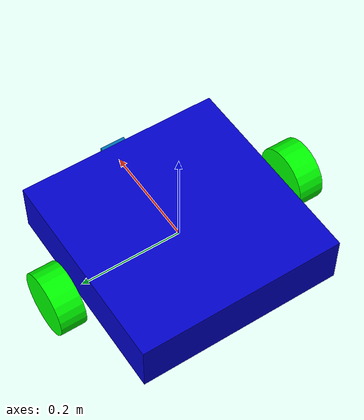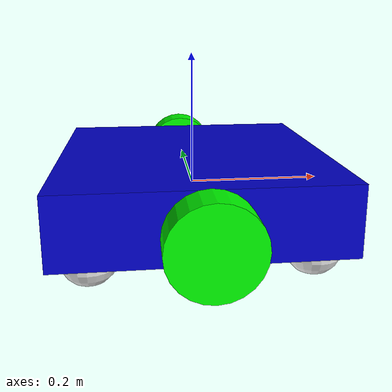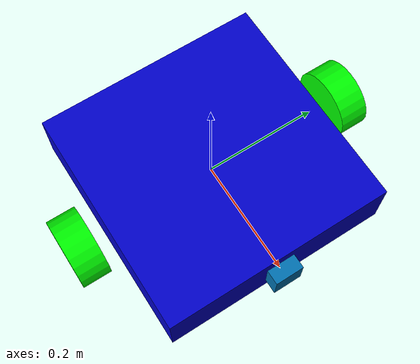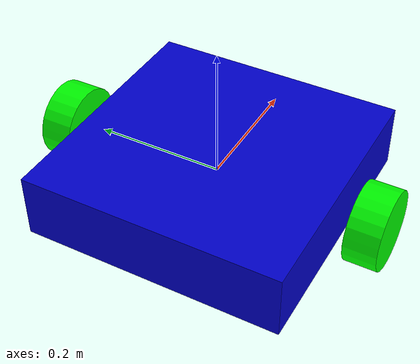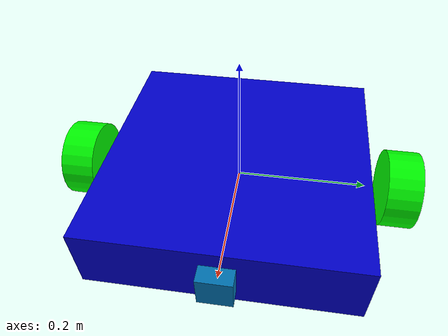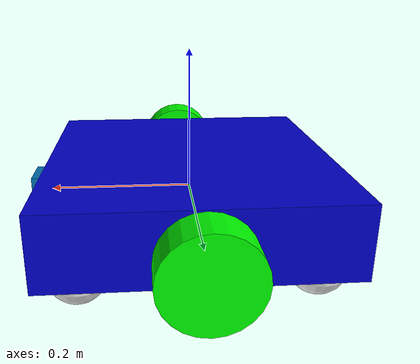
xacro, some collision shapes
<?xml version='1.0'?>
<robot name="udacity_bot"
	xmlns:xacro="http://www.ros.org/wiki/xacro">
	<material name="blue">
		<color rgba="0 0 0.8 1"/>
	</material>
	<material name="green">
		<color rgba="0 1 0 1"/>
	</material>
	<xacro:include filename="$(find udacity_bot)/urdf/udacity_bot.gazebo" />
	<link name="robot_footprint"></link>
	<joint name="robot_footprint_joint" type="fixed">
		<origin xyz="0 0 0" rpy="0 0 0" />
		<parent link="robot_footprint"/>
		<child link="chassis" />
	</joint>
<link name="chassis">
		<inertial>
			<mass value="15.0"/>
			<origin xyz="0.0 0 0" rpy=" 0 0 0"/>
			<inertia
          ixx="0.1" ixy="0" ixz="0"
          iyy="0.1" iyz="0"
          izz="0.1"
      />
		</inertial>
		<collision name='collision'>
			<origin xyz="0 0 0" rpy=" 0 0 0"/>
			<geometry>
				 <box size="0.4 0.4 0.1"/>

			</geometry>
		</collision>
		<visual>
			<geometry>
				 <box size="0.4 0.4 0.1"/>
			</geometry>
			<origin rpy="0 0 0" xyz="0 0 0"/>
			<material name="blue"/>
		</visual>
	<visual name='left_caster_visual'>
			<origin xyz="0.15 -0.15 -0.05" rpy=" 0 0 0"/>
			<geometry>
				<sphere radius="0.04"/>
			</geometry>
			<material name="white"/>
		</visual>
		<collision name='left_caster_collision'>
			<origin xyz="0.15 -0.15 -0.05" rpy=" 0 0 0"/>
			<geometry>
				<sphere radius="0.05"/>
			</geometry>
			<surface>
				<friction>
					<ode>
						<mu>0</mu>
						<mu2>0</mu2>
						<slip1>1.0</slip1>
						<slip2>1.0</slip2>
					</ode>
				</friction>
			</surface>
		</collision>
		<visual name='right_caster_visual'>
			<origin xyz="-0.15 0.15 -0.05" rpy=" 0 0 0"/>
			<geometry>
				<sphere radius="0.04"/>
			</geometry>
			<material name="white"/>
		</visual>
		<collision name='right_caster_collision'>
			<origin xyz="-0.15 0.15 -0.05" rpy=" 0 0 0"/>
			<geometry>
				<sphere radius="0.05"/>
			</geometry>
			<surface>
				<friction>
					<ode>
						<mu>0</mu>
						<mu2>0</mu2>
						<slip1>1.0</slip1>
						<slip2>1.0</slip2>
					</ode>
				</friction>
			</surface>
		</collision>
		<visual name='back_caster_visual'>
			<origin xyz="-0.15 -0.15 -0.05" rpy=" 0 0 0"/>
			<geometry>
				<sphere radius="0.04"/>
			</geometry>
			<material name="white"/>
		</visual>
		<collision name='back_caster_collision'>
			<origin xyz="-0.15 -0.15 -0.05" rpy=" 0 0 0"/>
			<geometry>
				<sphere radius="0.05"/>
			</geometry>
			<surface>
				<friction>
					<ode>
						<mu>0</mu>
						<mu2>0</mu2>
						<slip1>1.0</slip1>
						<slip2>1.0</slip2>
					</ode>
				</friction>
			</surface>
		</collision>
		<visual name='front_caster_visual'>
			<origin xyz="0.15 0.15 -0.05" rpy=" 0 0 0"/>
			<geometry>
				<sphere radius="0.04"/>
			</geometry>
			<material name="white"/>
		</visual>
		<collision name='front_caster_collision'>
			<origin xyz="0.15 0.15 -0.05" rpy=" 0 0 0"/>
			<geometry>
				<sphere radius="0.05"/>
			</geometry>
			<surface>
				<friction>
					<ode>
						<mu>0</mu>
						<mu2>0</mu2>
						<slip1>1.0</slip1>
						<slip2>1.0</slip2>
					</ode>
				</friction>
			</surface>
		</collision>
	</link>
	<link name="left_wheel">
		<visual>
			<geometry>
				<cylinder length="0.05" radius="0.06"/>
			</geometry>
			<origin rpy="0 1.5707 1.5707" xyz="0 0 0"/>
			<material name="green"/>
		</visual>
		<collision name="collision">
			<origin xyz="0 0 0" rpy="0 1.5707 1.5707"/>
			<geometry>
				<cylinder length="0.05" radius="0.1"/>
			</geometry>
		</collision>
		<inertial>
			<origin xyz="0 0 0" rpy="0 1.5707 1.5707"/>
			<mass value="5"/>
			<inertia ixx=".1"  ixy="0"  ixz="0" iyy=".1" iyz="0" izz=".1" />
		</inertial>
	</link>
	<joint name="left_wheel_hinge" type="continuous">
		<parent link="chassis"/>
		<child link="left_wheel"/>
		<origin xyz="0 0.25 0" rpy="0 0 0"/>
	</joint>
	<link name="right_wheel">
		<visual>
			<geometry>
				<cylinder length="0.05" radius="0.06"/>
			</geometry>
			<origin rpy="0 1.5707 1.5707" xyz="0 0 0"/>
			<material name="green"/>
		</visual>
		<collision name="collision">
			<origin xyz="0 0 0" rpy="0 1.5707 1.5707"/>
			<geometry>
				<cylinder length="0.05" radius="0.1"/>
			</geometry>
		</collision>
		<inertial>
			<origin xyz="0 0 0" rpy="0 1.5707 1.5707"/>
			<mass value="5"/>
			<inertia ixx=".1"  ixy="0"  ixz="0" iyy=".1" iyz="0" izz=".1" />
		</inertial>
	</link>
	<joint name="right_wheel_hinge" type="continuous">
		<parent link="chassis"/>
		<child link="right_wheel"/>
		<origin xyz="0 -0.25 0" rpy="0 0 0"/>
	</joint>
	<link name ="camera">
		<origin xyz="0 0 0" rpy="0 0 0"/>
		<collision>
			<origin xyz="0.2 0 0" rpy="0 0 0"/>
			<geometry>
				<box size="0.05 0.05 0.05"/>
			</geometry>
		</collision>
		<visual>
			<origin xyz=".20 0 0" rpy="0 0 0"/>
			<geometry>
				<box size="0.05 0.05 0.05"/>
			</geometry>
		</visual>
		<inertial>
			<mass value="0.1"/>
			<inertia ixx="1e-6"  ixy="0"  ixz="0" iyy="1e-6" iyz="0" izz="1e-6"/>
		</inertial>
	</link>
	<joint type="fixed" name="camera_joint">
		<orign xyz="0.2 0 0" rpy="0 0 0"/>
		<child link="camera"/>
		<parent link="chassis"/>
	</joint>
	<link name="hokuyo">
		<origin xyz="0 0 0" rpy="0 0 0"/>
		<collision name="collision">
			<origin xyz="0 0 0" rpy="0 1.5707 1.5707"/>
			<geometry>
				<box size="0.1 0 0"/>
			</geometry>
		</collision>
		<visual>
			<geometry>
				<mesh filename="package://udacity_bot/meshes/hokuyo.dae"/>
			</geometry>
		</visual>
		<inertial>
			<mass value=".1"/>
			<inertia ixx="1e-6"  ixy="0"  ixz="0" iyy="1e-6" iyz="0" izz="1e-6"/>
		</inertial>
	</link>
	<joint type="fixed" name="hokuyo_joint">
		<origin xyz="0.15 0 0.1" rpy="0 0 0"/>
		<child link="hokuyo"/>
		<parent link="chassis"/>
	</joint>

</robot>
